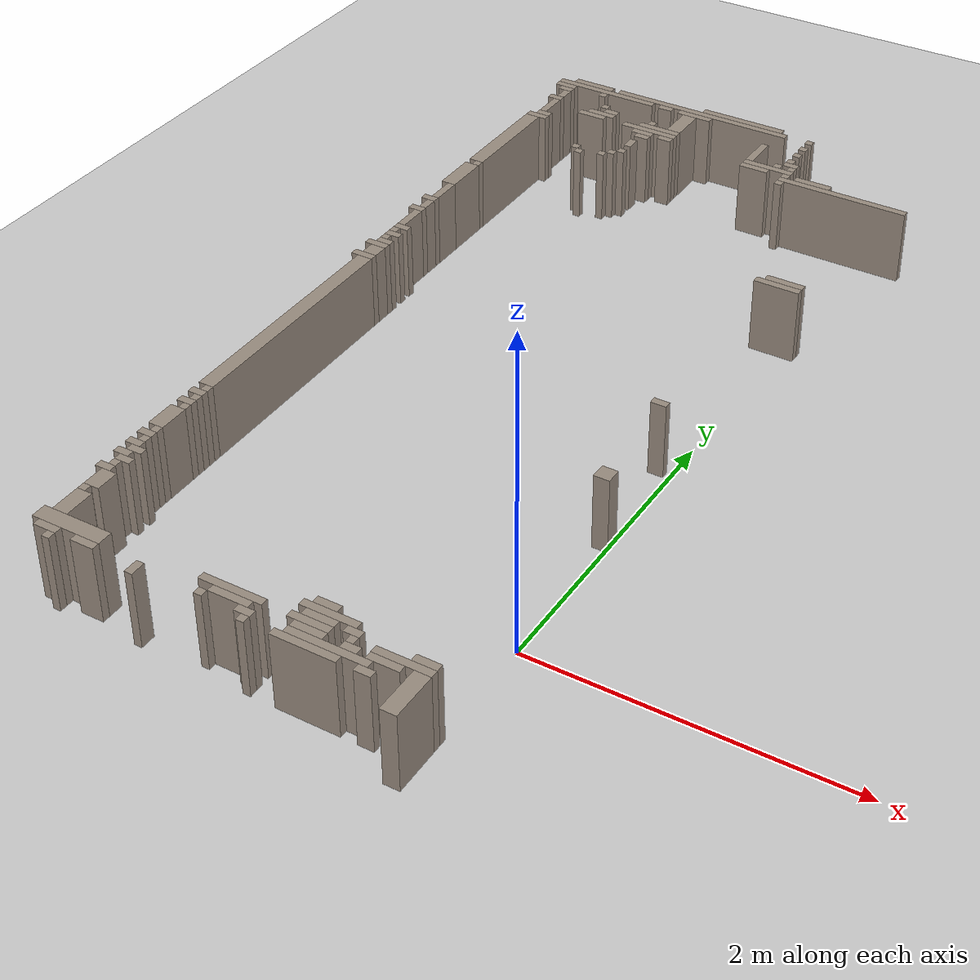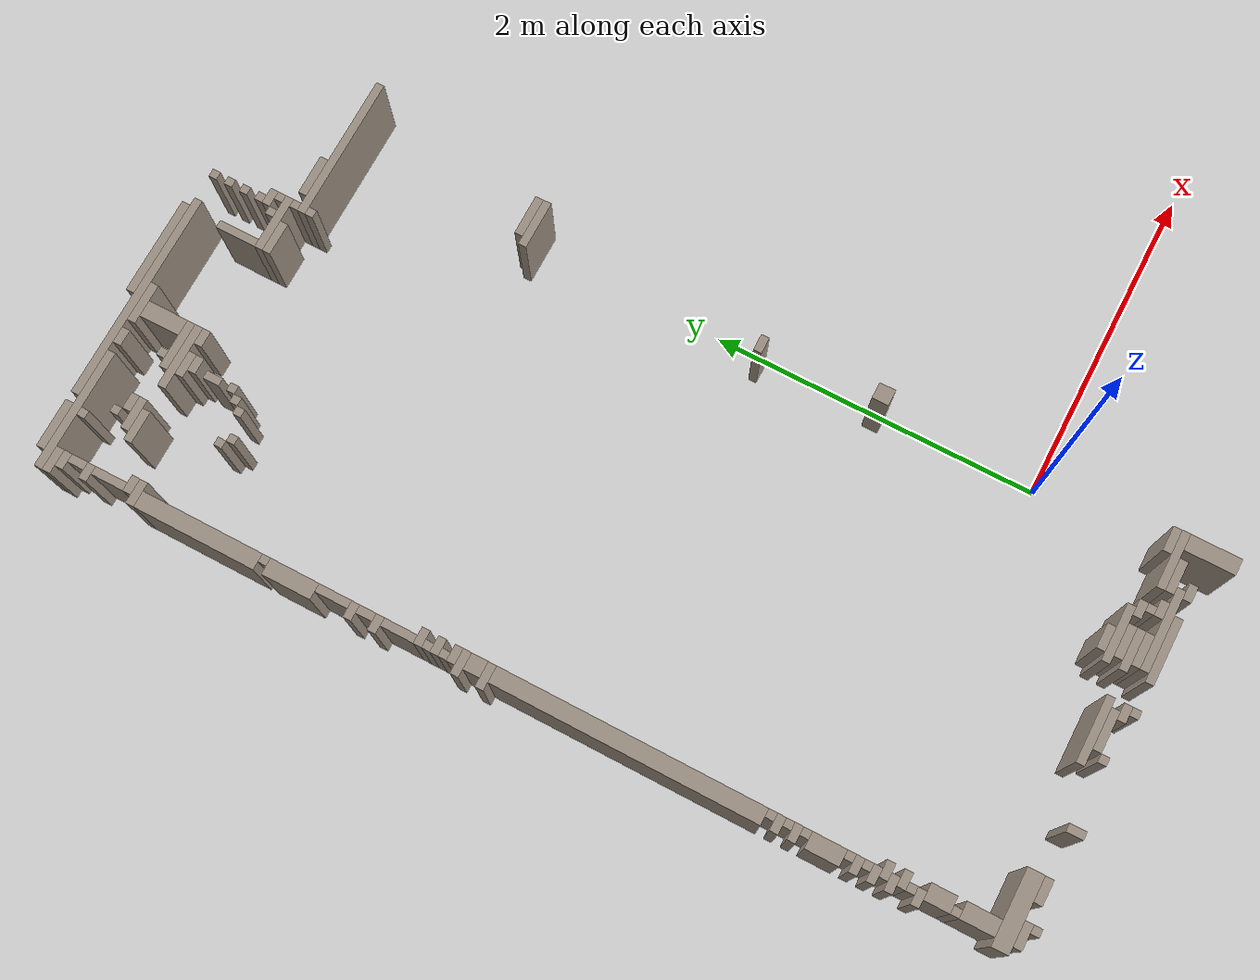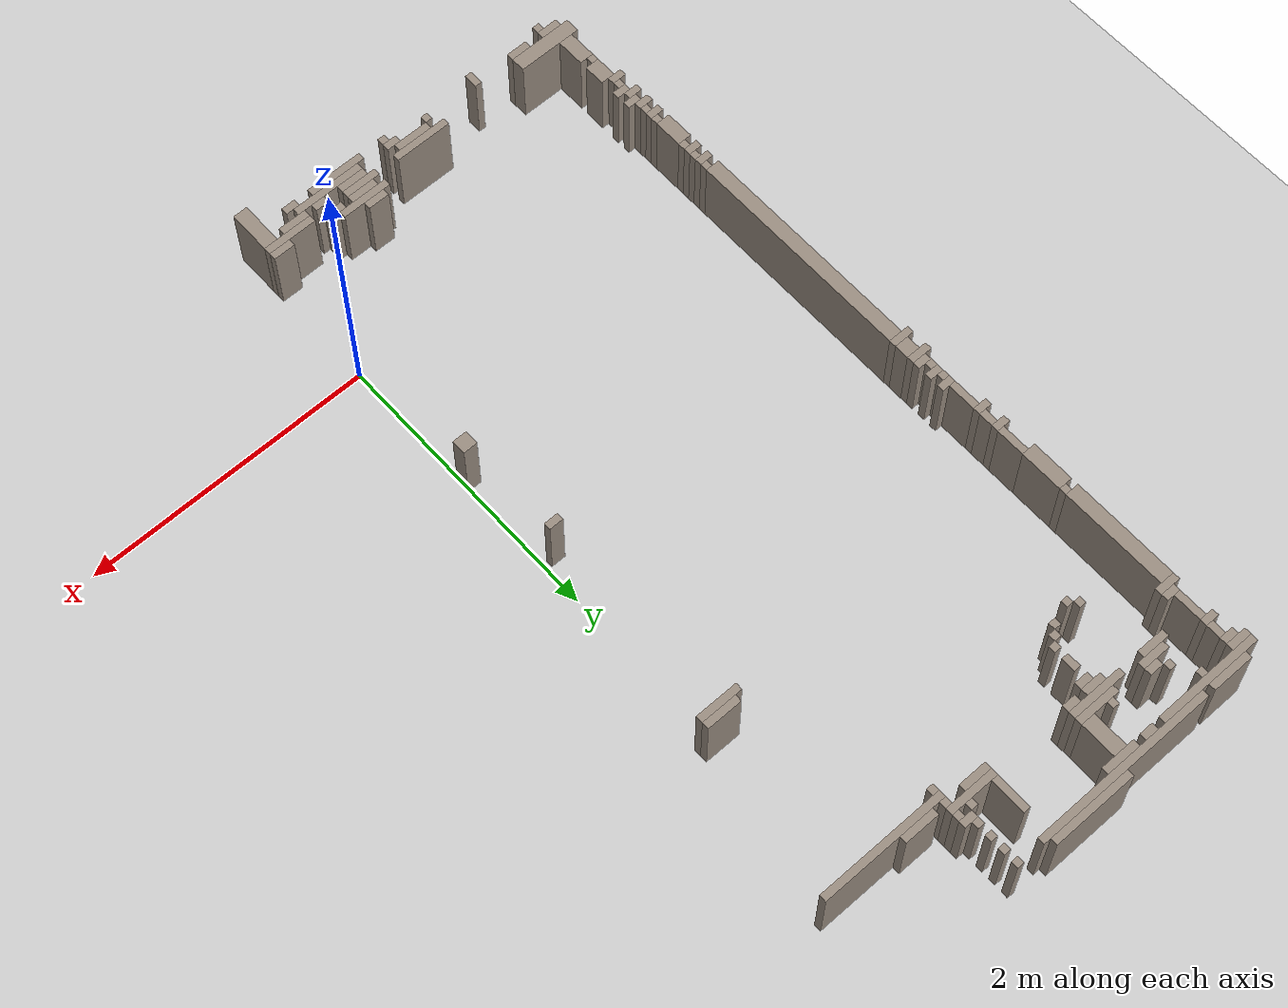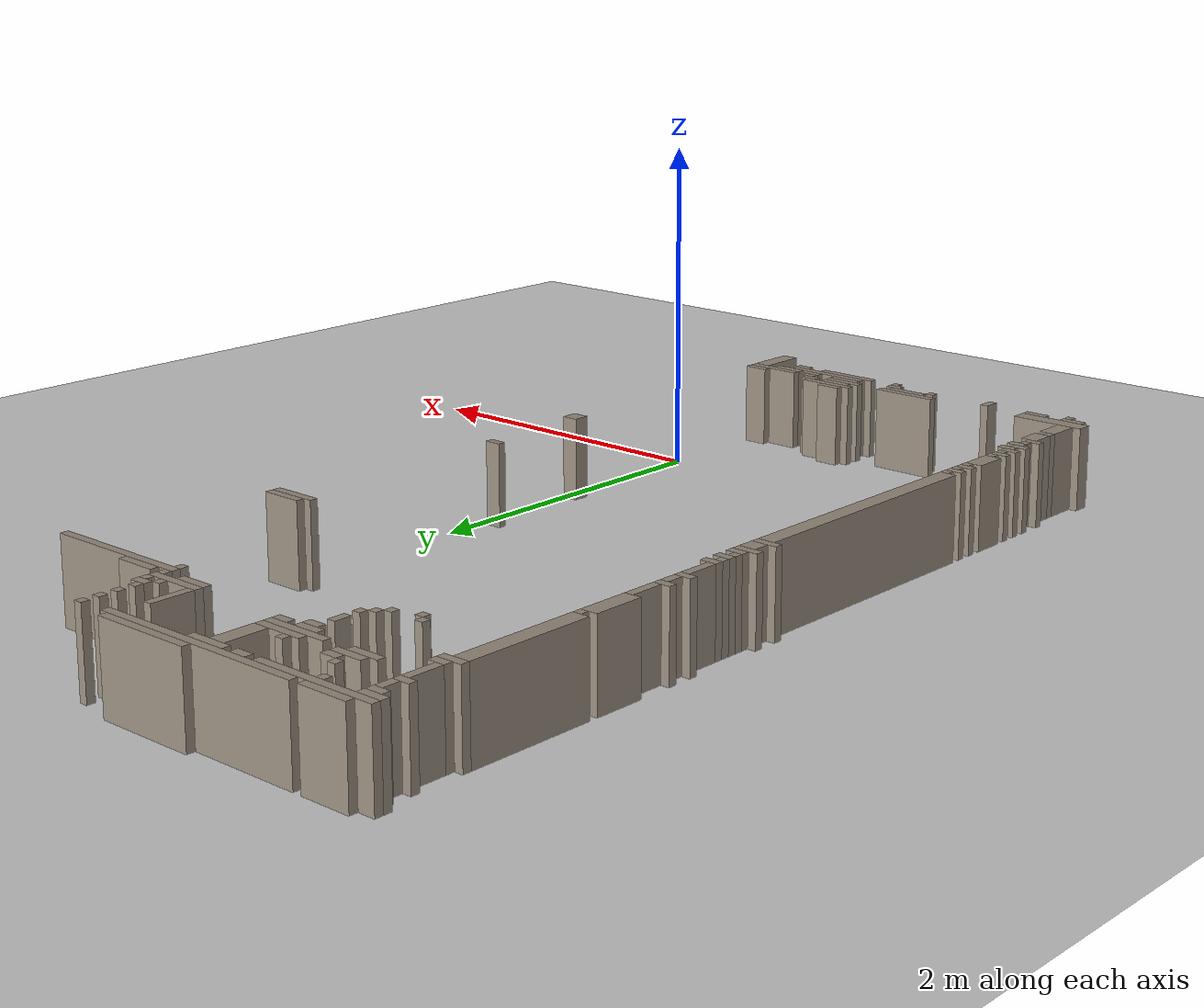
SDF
<sdf version="1.8">
 <world name="sala_real">
  <model name="ground_plane">
   <static>true</static>
   <link name="link">
    <collision name="col">
     <geometry><plane><normal>0 0 1</normal><size>100 100</size></plane></geometry>
    </collision>
    <visual name="vis">
     <geometry><plane><normal>0 0 1</normal><size>100 100</size></plane></geometry>
     <material><ambient>0.8 0.8 0.8 1</ambient><diffuse>0.8 0.8 0.8 1</diffuse></material>
    </visual>
   </link>
  </model>
  <model name="wall_1">
   <static>true</static>
   <pose>-0.610 4.912 0.250 0 0 0</pose>
   <link name="link">
    <collision name="col"><geometry><box><size>0.050 0.050 0.500</size></box></geometry></collision>
    <visual name="vis">
     <geometry><box><size>0.050 0.050 0.500</size></box></geometry>
     <material><ambient>0.6 0.55 0.5 1</ambient><diffuse>0.6 0.55 0.5 1</diffuse></material>
    </visual>
   </link>
  </model>
  <model name="wall_2">
   <static>true</static>
   <pose>-0.610 4.812 0.250 0 0 0</pose>
   <link name="link">
    <collision name="col"><geometry><box><size>0.050 0.050 0.500</size></box></geometry></collision>
    <visual name="vis">
     <geometry><box><size>0.050 0.050 0.500</size></box></geometry>
     <material><ambient>0.6 0.55 0.5 1</ambient><diffuse>0.6 0.55 0.5 1</diffuse></material>
    </visual>
   </link>
  </model>
  <model name="wall_4">
   <static>true</static>
   <pose>-2.435 4.762 0.250 0 0 0</pose>
   <link name="link">
    <collision name="col"><geometry><box><size>0.100 0.050 0.500</size></box></geometry></collision>
    <visual name="vis">
     <geometry><box><size>0.100 0.050 0.500</size></box></geometry>
     <material><ambient>0.6 0.55 0.5 1</ambient><diffuse>0.6 0.55 0.5 1</diffuse></material>
    </visual>
   </link>
  </model>
  <model name="wall_5">
   <static>true</static>
   <pose>-0.610 4.712 0.250 0 0 0</pose>
   <link name="link">
    <collision name="col"><geometry><box><size>0.050 0.050 0.500</size></box></geometry></collision>
    <visual name="vis">
     <geometry><box><size>0.050 0.050 0.500</size></box></geometry>
     <material><ambient>0.6 0.55 0.5 1</ambient><diffuse>0.6 0.55 0.5 1</diffuse></material>
    </visual>
   </link>
  </model>
  <model name="wall_6">
   <static>true</static>
   <pose>-2.410 4.687 0.250 0 0 0</pose>
   <link name="link">
    <collision name="col"><geometry><box><size>0.050 0.100 0.500</size></box></geometry></collision>
    <visual name="vis">
     <geometry><box><size>0.050 0.100 0.500</size></box></geometry>
     <material><ambient>0.6 0.55 0.5 1</ambient><diffuse>0.6 0.55 0.5 1</diffuse></material>
    </visual>
   </link>
  </model>
  <model name="wall_8">
   <static>true</static>
   <pose>-1.485 4.712 0.250 0 0 0</pose>
   <link name="link">
    <collision name="col"><geometry><box><size>0.100 0.250 0.500</size></box></geometry></collision>
    <visual name="vis">
     <geometry><box><size>0.100 0.250 0.500</size></box></geometry>
     <material><ambient>0.6 0.55 0.5 1</ambient><diffuse>0.6 0.55 0.5 1</diffuse></material>
    </visual>
   </link>
  </model>
  <model name="wall_11">
   <static>true</static>
   <pose>-0.560 4.512 0.250 0 0 0</pose>
   <link name="link">
    <collision name="col"><geometry><box><size>0.050 0.050 0.500</size></box></geometry></collision>
    <visual name="vis">
     <geometry><box><size>0.050 0.050 0.500</size></box></geometry>
     <material><ambient>0.6 0.55 0.5 1</ambient><diffuse>0.6 0.55 0.5 1</diffuse></material>
    </visual>
   </link>
  </model>
  <model name="wall_13">
   <static>true</static>
   <pose>-1.660 4.612 0.250 0 0 0</pose>
   <link name="link">
    <collision name="col"><geometry><box><size>0.050 0.050 0.500</size></box></geometry></collision>
    <visual name="vis">
     <geometry><box><size>0.050 0.050 0.500</size></box></geometry>
     <material><ambient>0.6 0.55 0.5 1</ambient><diffuse>0.6 0.55 0.5 1</diffuse></material>
    </visual>
   </link>
  </model>
  <model name="wall_14">
   <static>true</static>
   <pose>-0.560 4.412 0.250 0 0 0</pose>
   <link name="link">
    <collision name="col"><geometry><box><size>0.050 0.050 0.500</size></box></geometry></collision>
    <visual name="vis">
     <geometry><box><size>0.050 0.050 0.500</size></box></geometry>
     <material><ambient>0.6 0.55 0.5 1</ambient><diffuse>0.6 0.55 0.5 1</diffuse></material>
    </visual>
   </link>
  </model>
  <model name="wall_15">
   <static>true</static>
   <pose>-2.435 4.612 0.250 0 0 0</pose>
   <link name="link">
    <collision name="col"><geometry><box><size>0.100 0.050 0.500</size></box></geometry></collision>
    <visual name="vis">
     <geometry><box><size>0.100 0.050 0.500</size></box></geometry>
     <material><ambient>0.6 0.55 0.5 1</ambient><diffuse>0.6 0.55 0.5 1</diffuse></material>
    </visual>
   </link>
  </model>
  <model name="wall_16">
   <static>true</static>
   <pose>-1.660 4.287 0.250 0 0 0</pose>
   <link name="link">
    <collision name="col"><geometry><box><size>0.050 0.100 0.500</size></box></geometry></collision>
    <visual name="vis">
     <geometry><box><size>0.050 0.100 0.500</size></box></geometry>
     <material><ambient>0.6 0.55 0.5 1</ambient><diffuse>0.6 0.55 0.5 1</diffuse></material>
    </visual>
   </link>
  </model>
  <model name="wall_29">
   <static>true</static>
   <pose>-2.410 4.487 0.250 0 0 0</pose>
   <link name="link">
    <collision name="col"><geometry><box><size>0.050 0.200 0.500</size></box></geometry></collision>
    <visual name="vis">
     <geometry><box><size>0.050 0.200 0.500</size></box></geometry>
     <material><ambient>0.6 0.55 0.5 1</ambient><diffuse>0.6 0.55 0.5 1</diffuse></material>
    </visual>
   </link>
  </model>
  <model name="wall_31">
   <static>true</static>
   <pose>-2.435 3.912 0.250 0 0 0</pose>
   <link name="link">
    <collision name="col"><geometry><box><size>0.100 0.750 0.500</size></box></geometry></collision>
    <visual name="vis">
     <geometry><box><size>0.100 0.750 0.500</size></box></geometry>
     <material><ambient>0.6 0.55 0.5 1</ambient><diffuse>0.6 0.55 0.5 1</diffuse></material>
    </visual>
   </link>
  </model>
  <model name="wall_43">
   <static>true</static>
   <pose>-2.410 3.512 0.250 0 0 0</pose>
   <link name="link">
    <collision name="col"><geometry><box><size>0.050 0.050 0.500</size></box></geometry></collision>
    <visual name="vis">
     <geometry><box><size>0.050 0.050 0.500</size></box></geometry>
     <material><ambient>0.6 0.55 0.5 1</ambient><diffuse>0.6 0.55 0.5 1</diffuse></material>
    </visual>
   </link>
  </model>
  <model name="wall_52">
   <static>true</static>
   <pose>-2.435 3.337 0.250 0 0 0</pose>
   <link name="link">
    <collision name="col"><geometry><box><size>0.100 0.300 0.500</size></box></geometry></collision>
    <visual name="vis">
     <geometry><box><size>0.100 0.300 0.500</size></box></geometry>
     <material><ambient>0.6 0.55 0.5 1</ambient><diffuse>0.6 0.55 0.5 1</diffuse></material>
    </visual>
   </link>
  </model>
  <model name="wall_54">
   <static>true</static>
   <pose>-2.410 3.087 0.250 0 0 0</pose>
   <link name="link">
    <collision name="col"><geometry><box><size>0.050 0.200 0.500</size></box></geometry></collision>
    <visual name="vis">
     <geometry><box><size>0.050 0.200 0.500</size></box></geometry>
     <material><ambient>0.6 0.55 0.5 1</ambient><diffuse>0.6 0.55 0.5 1</diffuse></material>
    </visual>
   </link>
  </model>
  <model name="wall_57">
   <static>true</static>
   <pose>-2.435 2.962 0.250 0 0 0</pose>
   <link name="link">
    <collision name="col"><geometry><box><size>0.100 0.050 0.500</size></box></geometry></collision>
    <visual name="vis">
     <geometry><box><size>0.100 0.050 0.500</size></box></geometry>
     <material><ambient>0.6 0.55 0.5 1</ambient><diffuse>0.6 0.55 0.5 1</diffuse></material>
    </visual>
   </link>
  </model>
  <model name="wall_61">
   <static>true</static>
   <pose>-2.410 2.887 0.250 0 0 0</pose>
   <link name="link">
    <collision name="col"><geometry><box><size>0.050 0.100 0.500</size></box></geometry></collision>
    <visual name="vis">
     <geometry><box><size>0.050 0.100 0.500</size></box></geometry>
     <material><ambient>0.6 0.55 0.5 1</ambient><diffuse>0.6 0.55 0.5 1</diffuse></material>
    </visual>
   </link>
  </model>
  <model name="wall_65">
   <static>true</static>
   <pose>-2.385 4.362 0.250 0 0 0</pose>
   <link name="link">
    <collision name="col"><geometry><box><size>0.100 0.050 0.500</size></box></geometry></collision>
    <visual name="vis">
     <geometry><box><size>0.100 0.050 0.500</size></box></geometry>
     <material><ambient>0.6 0.55 0.5 1</ambient><diffuse>0.6 0.55 0.5 1</diffuse></material>
    </visual>
   </link>
  </model>
  <model name="wall_68">
   <static>true</static>
   <pose>-2.410 2.687 0.250 0 0 0</pose>
   <link name="link">
    <collision name="col"><geometry><box><size>0.050 0.200 0.500</size></box></geometry></collision>
    <visual name="vis">
     <geometry><box><size>0.050 0.200 0.500</size></box></geometry>
     <material><ambient>0.6 0.55 0.5 1</ambient><diffuse>0.6 0.55 0.5 1</diffuse></material>
    </visual>
   </link>
  </model>
  <model name="wall_73">
   <static>true</static>
   <pose>-2.385 2.562 0.250 0 0 0</pose>
   <link name="link">
    <collision name="col"><geometry><box><size>0.100 0.050 0.500</size></box></geometry></collision>
    <visual name="vis">
     <geometry><box><size>0.100 0.050 0.500</size></box></geometry>
     <material><ambient>0.6 0.55 0.5 1</ambient><diffuse>0.6 0.55 0.5 1</diffuse></material>
    </visual>
   </link>
  </model>
  <model name="wall_75">
   <static>true</static>
   <pose>-2.410 2.512 0.250 0 0 0</pose>
   <link name="link">
    <collision name="col"><geometry><box><size>0.050 0.050 0.500</size></box></geometry></collision>
    <visual name="vis">
     <geometry><box><size>0.050 0.050 0.500</size></box></geometry>
     <material><ambient>0.6 0.55 0.5 1</ambient><diffuse>0.6 0.55 0.5 1</diffuse></material>
    </visual>
   </link>
  </model>
  <model name="wall_79">
   <static>true</static>
   <pose>-2.385 2.462 0.250 0 0 0</pose>
   <link name="link">
    <collision name="col"><geometry><box><size>0.100 0.050 0.500</size></box></geometry></collision>
    <visual name="vis">
     <geometry><box><size>0.100 0.050 0.500</size></box></geometry>
     <material><ambient>0.6 0.55 0.5 1</ambient><diffuse>0.6 0.55 0.5 1</diffuse></material>
    </visual>
   </link>
  </model>
  <model name="wall_82">
   <static>true</static>
   <pose>-2.410 4.312 0.250 0 0 0</pose>
   <link name="link">
    <collision name="col"><geometry><box><size>0.150 0.050 0.500</size></box></geometry></collision>
    <visual name="vis">
     <geometry><box><size>0.150 0.050 0.500</size></box></geometry>
     <material><ambient>0.6 0.55 0.5 1</ambient><diffuse>0.6 0.55 0.5 1</diffuse></material>
    </visual>
   </link>
  </model>
  <model name="wall_85">
   <static>true</static>
   <pose>-2.385 2.362 0.250 0 0 0</pose>
   <link name="link">
    <collision name="col"><geometry><box><size>0.100 0.050 0.500</size></box></geometry></collision>
    <visual name="vis">
     <geometry><box><size>0.100 0.050 0.500</size></box></geometry>
     <material><ambient>0.6 0.55 0.5 1</ambient><diffuse>0.6 0.55 0.5 1</diffuse></material>
    </visual>
   </link>
  </model>
  <model name="wall_89">
   <static>true</static>
   <pose>-2.410 2.312 0.250 0 0 0</pose>
   <link name="link">
    <collision name="col"><geometry><box><size>0.150 0.050 0.500</size></box></geometry></collision>
    <visual name="vis">
     <geometry><box><size>0.150 0.050 0.500</size></box></geometry>
     <material><ambient>0.6 0.55 0.5 1</ambient><diffuse>0.6 0.55 0.5 1</diffuse></material>
    </visual>
   </link>
  </model>
  <model name="wall_91">
   <static>true</static>
   <pose>-2.385 2.237 0.250 0 0 0</pose>
   <link name="link">
    <collision name="col"><geometry><box><size>0.100 0.100 0.500</size></box></geometry></collision>
    <visual name="vis">
     <geometry><box><size>0.100 0.100 0.500</size></box></geometry>
     <material><ambient>0.6 0.55 0.5 1</ambient><diffuse>0.6 0.55 0.5 1</diffuse></material>
    </visual>
   </link>
  </model>
  <model name="wall_133">
   <static>true</static>
   <pose>-2.385 1.337 0.250 0 0 0</pose>
   <link name="link">
    <collision name="col"><geometry><box><size>0.100 1.600 0.500</size></box></geometry></collision>
    <visual name="vis">
     <geometry><box><size>0.100 1.600 0.500</size></box></geometry>
     <material><ambient>0.6 0.55 0.5 1</ambient><diffuse>0.6 0.55 0.5 1</diffuse></material>
    </visual>
   </link>
  </model>
  <model name="wall_137">
   <static>true</static>
   <pose>-2.360 0.512 0.250 0 0 0</pose>
   <link name="link">
    <collision name="col"><geometry><box><size>0.050 0.050 0.500</size></box></geometry></collision>
    <visual name="vis">
     <geometry><box><size>0.050 0.050 0.500</size></box></geometry>
     <material><ambient>0.6 0.55 0.5 1</ambient><diffuse>0.6 0.55 0.5 1</diffuse></material>
    </visual>
   </link>
  </model>
  <model name="wall_139">
   <static>true</static>
   <pose>-2.385 0.462 0.250 0 0 0</pose>
   <link name="link">
    <collision name="col"><geometry><box><size>0.100 0.050 0.500</size></box></geometry></collision>
    <visual name="vis">
     <geometry><box><size>0.100 0.050 0.500</size></box></geometry>
     <material><ambient>0.6 0.55 0.5 1</ambient><diffuse>0.6 0.55 0.5 1</diffuse></material>
    </visual>
   </link>
  </model>
  <model name="wall_141">
   <static>true</static>
   <pose>-2.360 0.412 0.250 0 0 0</pose>
   <link name="link">
    <collision name="col"><geometry><box><size>0.050 0.050 0.500</size></box></geometry></collision>
    <visual name="vis">
     <geometry><box><size>0.050 0.050 0.500</size></box></geometry>
     <material><ambient>0.6 0.55 0.5 1</ambient><diffuse>0.6 0.55 0.5 1</diffuse></material>
    </visual>
   </link>
  </model>
  <model name="wall_143">
   <static>true</static>
   <pose>-2.385 0.362 0.250 0 0 0</pose>
   <link name="link">
    <collision name="col"><geometry><box><size>0.100 0.050 0.500</size></box></geometry></collision>
    <visual name="vis">
     <geometry><box><size>0.100 0.050 0.500</size></box></geometry>
     <material><ambient>0.6 0.55 0.5 1</ambient><diffuse>0.6 0.55 0.5 1</diffuse></material>
    </visual>
   </link>
  </model>
  <model name="wall_152">
   <static>true</static>
   <pose>-2.360 0.312 0.250 0 0 0</pose>
   <link name="link">
    <collision name="col"><geometry><box><size>0.050 0.050 0.500</size></box></geometry></collision>
    <visual name="vis">
     <geometry><box><size>0.050 0.050 0.500</size></box></geometry>
     <material><ambient>0.6 0.55 0.5 1</ambient><diffuse>0.6 0.55 0.5 1</diffuse></material>
    </visual>
   </link>
  </model>
  <model name="wall_155">
   <static>true</static>
   <pose>-2.385 0.187 0.250 0 0 0</pose>
   <link name="link">
    <collision name="col"><geometry><box><size>0.100 0.200 0.500</size></box></geometry></collision>
    <visual name="vis">
     <geometry><box><size>0.100 0.200 0.500</size></box></geometry>
     <material><ambient>0.6 0.55 0.5 1</ambient><diffuse>0.6 0.55 0.5 1</diffuse></material>
    </visual>
   </link>
  </model>
  <model name="wall_157">
   <static>true</static>
   <pose>-2.360 0.062 0.250 0 0 0</pose>
   <link name="link">
    <collision name="col"><geometry><box><size>0.050 0.050 0.500</size></box></geometry></collision>
    <visual name="vis">
     <geometry><box><size>0.050 0.050 0.500</size></box></geometry>
     <material><ambient>0.6 0.55 0.5 1</ambient><diffuse>0.6 0.55 0.5 1</diffuse></material>
    </visual>
   </link>
  </model>
  <model name="wall_158">
   <static>true</static>
   <pose>-2.385 0.012 0.250 0 0 0</pose>
   <link name="link">
    <collision name="col"><geometry><box><size>0.100 0.050 0.500</size></box></geometry></collision>
    <visual name="vis">
     <geometry><box><size>0.100 0.050 0.500</size></box></geometry>
     <material><ambient>0.6 0.55 0.5 1</ambient><diffuse>0.6 0.55 0.5 1</diffuse></material>
    </visual>
   </link>
  </model>
  <model name="wall_159">
   <static>true</static>
   <pose>-2.385 -0.088 0.250 0 0 0</pose>
   <link name="link">
    <collision name="col"><geometry><box><size>0.100 0.050 0.500</size></box></geometry></collision>
    <visual name="vis">
     <geometry><box><size>0.100 0.050 0.500</size></box></geometry>
     <material><ambient>0.6 0.55 0.5 1</ambient><diffuse>0.6 0.55 0.5 1</diffuse></material>
    </visual>
   </link>
  </model>
  <model name="wall_162">
   <static>true</static>
   <pose>-2.335 -0.138 0.250 0 0 0</pose>
   <link name="link">
    <collision name="col"><geometry><box><size>0.100 0.050 0.500</size></box></geometry></collision>
    <visual name="vis">
     <geometry><box><size>0.100 0.050 0.500</size></box></geometry>
     <material><ambient>0.6 0.55 0.5 1</ambient><diffuse>0.6 0.55 0.5 1</diffuse></material>
    </visual>
   </link>
  </model>
  <model name="wall_163">
   <static>true</static>
   <pose>-2.360 -0.038 0.250 0 0 0</pose>
   <link name="link">
    <collision name="col"><geometry><box><size>0.050 0.050 0.500</size></box></geometry></collision>
    <visual name="vis">
     <geometry><box><size>0.050 0.050 0.500</size></box></geometry>
     <material><ambient>0.6 0.55 0.5 1</ambient><diffuse>0.6 0.55 0.5 1</diffuse></material>
    </visual>
   </link>
  </model>
  <model name="wall_164">
   <static>true</static>
   <pose>-2.385 -0.188 0.250 0 0 0</pose>
   <link name="link">
    <collision name="col"><geometry><box><size>0.100 0.050 0.500</size></box></geometry></collision>
    <visual name="vis">
     <geometry><box><size>0.100 0.050 0.500</size></box></geometry>
     <material><ambient>0.6 0.55 0.5 1</ambient><diffuse>0.6 0.55 0.5 1</diffuse></material>
    </visual>
   </link>
  </model>
  <model name="wall_166">
   <static>true</static>
   <pose>-2.335 -0.238 0.250 0 0 0</pose>
   <link name="link">
    <collision name="col"><geometry><box><size>0.100 0.050 0.500</size></box></geometry></collision>
    <visual name="vis">
     <geometry><box><size>0.100 0.050 0.500</size></box></geometry>
     <material><ambient>0.6 0.55 0.5 1</ambient><diffuse>0.6 0.55 0.5 1</diffuse></material>
    </visual>
   </link>
  </model>
  <model name="wall_168">
   <static>true</static>
   <pose>-2.360 -0.288 0.250 0 0 0</pose>
   <link name="link">
    <collision name="col"><geometry><box><size>0.050 0.050 0.500</size></box></geometry></collision>
    <visual name="vis">
     <geometry><box><size>0.050 0.050 0.500</size></box></geometry>
     <material><ambient>0.6 0.55 0.5 1</ambient><diffuse>0.6 0.55 0.5 1</diffuse></material>
    </visual>
   </link>
  </model>
  <model name="wall_173">
   <static>true</static>
   <pose>-2.335 -0.438 0.250 0 0 0</pose>
   <link name="link">
    <collision name="col"><geometry><box><size>0.100 0.150 0.500</size></box></geometry></collision>
    <visual name="vis">
     <geometry><box><size>0.100 0.150 0.500</size></box></geometry>
     <material><ambient>0.6 0.55 0.5 1</ambient><diffuse>0.6 0.55 0.5 1</diffuse></material>
    </visual>
   </link>
  </model>
  <model name="wall_187">
   <static>true</static>
   <pose>-0.685 -0.738 0.250 0 0 0</pose>
   <link name="link">
    <collision name="col"><geometry><box><size>0.200 0.050 0.500</size></box></geometry></collision>
    <visual name="vis">
     <geometry><box><size>0.200 0.050 0.500</size></box></geometry>
     <material><ambient>0.6 0.55 0.5 1</ambient><diffuse>0.6 0.55 0.5 1</diffuse></material>
    </visual>
   </link>
  </model>
  <model name="wall_188">
   <static>true</static>
   <pose>-0.035 0.987 0.250 0 0 0</pose>
   <link name="link">
    <collision name="col"><geometry><box><size>0.100 0.100 0.500</size></box></geometry></collision>
    <visual name="vis">
     <geometry><box><size>0.100 0.100 0.500</size></box></geometry>
     <material><ambient>0.6 0.55 0.5 1</ambient><diffuse>0.6 0.55 0.5 1</diffuse></material>
    </visual>
   </link>
  </model>
  <model name="wall_191">
   <static>true</static>
   <pose>-1.710 4.112 0.250 0 0 0</pose>
   <link name="link">
    <collision name="col"><geometry><box><size>0.050 0.050 0.500</size></box></geometry></collision>
    <visual name="vis">
     <geometry><box><size>0.050 0.050 0.500</size></box></geometry>
     <material><ambient>0.6 0.55 0.5 1</ambient><diffuse>0.6 0.55 0.5 1</diffuse></material>
    </visual>
   </link>
  </model>
  <model name="wall_200">
   <static>true</static>
   <pose>-1.310 -0.888 0.250 0 0 0</pose>
   <link name="link">
    <collision name="col"><geometry><box><size>0.050 0.050 0.500</size></box></geometry></collision>
    <visual name="vis">
     <geometry><box><size>0.050 0.050 0.500</size></box></geometry>
     <material><ambient>0.6 0.55 0.5 1</ambient><diffuse>0.6 0.55 0.5 1</diffuse></material>
    </visual>
   </link>
  </model>
  <model name="wall_201">
   <static>true</static>
   <pose>-1.035 -0.888 0.250 0 0 0</pose>
   <link name="link">
    <collision name="col"><geometry><box><size>0.100 0.050 0.500</size></box></geometry></collision>
    <visual name="vis">
     <geometry><box><size>0.100 0.050 0.500</size></box></geometry>
     <material><ambient>0.6 0.55 0.5 1</ambient><diffuse>0.6 0.55 0.5 1</diffuse></material>
    </visual>
   </link>
  </model>
  <model name="wall_211">
   <static>true</static>
   <pose>-1.010 -0.938 0.250 0 0 0</pose>
   <link name="link">
    <collision name="col"><geometry><box><size>0.050 0.050 0.500</size></box></geometry></collision>
    <visual name="vis">
     <geometry><box><size>0.050 0.050 0.500</size></box></geometry>
     <material><ambient>0.6 0.55 0.5 1</ambient><diffuse>0.6 0.55 0.5 1</diffuse></material>
    </visual>
   </link>
  </model>
  <model name="wall_212">
   <static>true</static>
   <pose>-0.285 -0.938 0.250 0 0 0</pose>
   <link name="link">
    <collision name="col"><geometry><box><size>0.100 0.050 0.500</size></box></geometry></collision>
    <visual name="vis">
     <geometry><box><size>0.100 0.050 0.500</size></box></geometry>
     <material><ambient>0.6 0.55 0.5 1</ambient><diffuse>0.6 0.55 0.5 1</diffuse></material>
    </visual>
   </link>
  </model>
  <model name="wall_215">
   <static>true</static>
   <pose>-0.160 -0.788 0.250 0 0 0</pose>
   <link name="link">
    <collision name="col"><geometry><box><size>0.350 0.050 0.500</size></box></geometry></collision>
    <visual name="vis">
     <geometry><box><size>0.350 0.050 0.500</size></box></geometry>
     <material><ambient>0.6 0.55 0.5 1</ambient><diffuse>0.6 0.55 0.5 1</diffuse></material>
    </visual>
   </link>
  </model>
  <model name="wall_236">
   <static>true</static>
   <pose>-2.060 -0.888 0.250 0 0 0</pose>
   <link name="link">
    <collision name="col"><geometry><box><size>0.150 0.050 0.500</size></box></geometry></collision>
    <visual name="vis">
     <geometry><box><size>0.150 0.050 0.500</size></box></geometry>
     <material><ambient>0.6 0.55 0.5 1</ambient><diffuse>0.6 0.55 0.5 1</diffuse></material>
    </visual>
   </link>
  </model>
  <model name="wall_243">
   <static>true</static>
   <pose>-0.035 -0.963 0.250 0 0 0</pose>
   <link name="link">
    <collision name="col"><geometry><box><size>0.100 0.300 0.500</size></box></geometry></collision>
    <visual name="vis">
     <geometry><box><size>0.100 0.300 0.500</size></box></geometry>
     <material><ambient>0.6 0.55 0.5 1</ambient><diffuse>0.6 0.55 0.5 1</diffuse></material>
    </visual>
   </link>
  </model>
  <model name="wall_264">
   <static>true</static>
   <pose>-2.335 -0.663 0.250 0 0 0</pose>
   <link name="link">
    <collision name="col"><geometry><box><size>0.100 0.200 0.500</size></box></geometry></collision>
    <visual name="vis">
     <geometry><box><size>0.100 0.200 0.500</size></box></geometry>
     <material><ambient>0.6 0.55 0.5 1</ambient><diffuse>0.6 0.55 0.5 1</diffuse></material>
    </visual>
   </link>
  </model>
  <model name="wall_325">
   <static>true</static>
   <pose>-2.310 -0.888 0.250 0 0 0</pose>
   <link name="link">
    <collision name="col"><geometry><box><size>0.150 0.050 0.500</size></box></geometry></collision>
    <visual name="vis">
     <geometry><box><size>0.150 0.050 0.500</size></box></geometry>
     <material><ambient>0.6 0.55 0.5 1</ambient><diffuse>0.6 0.55 0.5 1</diffuse></material>
    </visual>
   </link>
  </model>
  <model name="wall_388">
   <static>true</static>
   <pose>-0.610 4.612 0.250 0 0 0</pose>
   <link name="link">
    <collision name="col"><geometry><box><size>0.050 0.050 0.500</size></box></geometry></collision>
    <visual name="vis">
     <geometry><box><size>0.050 0.050 0.500</size></box></geometry>
     <material><ambient>0.6 0.55 0.5 1</ambient><diffuse>0.6 0.55 0.5 1</diffuse></material>
    </visual>
   </link>
  </model>
  <model name="wall_422">
   <static>true</static>
   <pose>-2.360 -0.538 0.250 0 0 0</pose>
   <link name="link">
    <collision name="col"><geometry><box><size>0.050 0.050 0.500</size></box></geometry></collision>
    <visual name="vis">
     <geometry><box><size>0.050 0.050 0.500</size></box></geometry>
     <material><ambient>0.6 0.55 0.5 1</ambient><diffuse>0.6 0.55 0.5 1</diffuse></material>
    </visual>
   </link>
  </model>
  <model name="wall_441">
   <static>true</static>
   <pose>-0.560 4.312 0.250 0 0 0</pose>
   <link name="link">
    <collision name="col"><geometry><box><size>0.050 0.050 0.500</size></box></geometry></collision>
    <visual name="vis">
     <geometry><box><size>0.050 0.050 0.500</size></box></geometry>
     <material><ambient>0.6 0.55 0.5 1</ambient><diffuse>0.6 0.55 0.5 1</diffuse></material>
    </visual>
   </link>
  </model>
  <model name="wall_444">
   <static>true</static>
   <pose>-0.660 4.512 0.250 0 0 0</pose>
   <link name="link">
    <collision name="col"><geometry><box><size>0.050 0.050 0.500</size></box></geometry></collision>
    <visual name="vis">
     <geometry><box><size>0.050 0.050 0.500</size></box></geometry>
     <material><ambient>0.6 0.55 0.5 1</ambient><diffuse>0.6 0.55 0.5 1</diffuse></material>
    </visual>
   </link>
  </model>
  <model name="wall_450">
   <static>true</static>
   <pose>-0.460 -0.788 0.250 0 0 0</pose>
   <link name="link">
    <collision name="col"><geometry><box><size>0.050 0.050 0.500</size></box></geometry></collision>
    <visual name="vis">
     <geometry><box><size>0.050 0.050 0.500</size></box></geometry>
     <material><ambient>0.6 0.55 0.5 1</ambient><diffuse>0.6 0.55 0.5 1</diffuse></material>
    </visual>
   </link>
  </model>
  <model name="wall_454">
   <static>true</static>
   <pose>-2.160 4.812 0.250 0 0 0</pose>
   <link name="link">
    <collision name="col"><geometry><box><size>0.050 0.050 0.500</size></box></geometry></collision>
    <visual name="vis">
     <geometry><box><size>0.050 0.050 0.500</size></box></geometry>
     <material><ambient>0.6 0.55 0.5 1</ambient><diffuse>0.6 0.55 0.5 1</diffuse></material>
    </visual>
   </link>
  </model>
  <model name="wall_459">
   <static>true</static>
   <pose>-2.410 2.412 0.250 0 0 0</pose>
   <link name="link">
    <collision name="col"><geometry><box><size>0.050 0.050 0.500</size></box></geometry></collision>
    <visual name="vis">
     <geometry><box><size>0.050 0.050 0.500</size></box></geometry>
     <material><ambient>0.6 0.55 0.5 1</ambient><diffuse>0.6 0.55 0.5 1</diffuse></material>
    </visual>
   </link>
  </model>
  <model name="wall_460">
   <static>true</static>
   <pose>-2.060 4.662 0.250 0 0 0</pose>
   <link name="link">
    <collision name="col"><geometry><box><size>0.050 0.050 0.500</size></box></geometry></collision>
    <visual name="vis">
     <geometry><box><size>0.050 0.050 0.500</size></box></geometry>
     <material><ambient>0.6 0.55 0.5 1</ambient><diffuse>0.6 0.55 0.5 1</diffuse></material>
    </visual>
   </link>
  </model>
  <model name="wall_465">
   <static>true</static>
   <pose>-2.260 -0.938 0.250 0 0 0</pose>
   <link name="link">
    <collision name="col"><geometry><box><size>0.050 0.050 0.500</size></box></geometry></collision>
    <visual name="vis">
     <geometry><box><size>0.050 0.050 0.500</size></box></geometry>
     <material><ambient>0.6 0.55 0.5 1</ambient><diffuse>0.6 0.55 0.5 1</diffuse></material>
    </visual>
   </link>
  </model>
  <model name="wall_489">
   <static>true</static>
   <pose>-1.710 -0.913 0.250 0 0 0</pose>
   <link name="link">
    <collision name="col"><geometry><box><size>0.050 0.100 0.500</size></box></geometry></collision>
    <visual name="vis">
     <geometry><box><size>0.050 0.100 0.500</size></box></geometry>
     <material><ambient>0.6 0.55 0.5 1</ambient><diffuse>0.6 0.55 0.5 1</diffuse></material>
    </visual>
   </link>
  </model>
  <model name="wall_495">
   <static>true</static>
   <pose>-1.960 4.062 0.250 0 0 0</pose>
   <link name="link">
    <collision name="col"><geometry><box><size>0.050 0.050 0.500</size></box></geometry></collision>
    <visual name="vis">
     <geometry><box><size>0.050 0.050 0.500</size></box></geometry>
     <material><ambient>0.6 0.55 0.5 1</ambient><diffuse>0.6 0.55 0.5 1</diffuse></material>
    </visual>
   </link>
  </model>
  <model name="wall_496">
   <static>true</static>
   <pose>-1.660 4.162 0.250 0 0 0</pose>
   <link name="link">
    <collision name="col"><geometry><box><size>0.050 0.050 0.500</size></box></geometry></collision>
    <visual name="vis">
     <geometry><box><size>0.050 0.050 0.500</size></box></geometry>
     <material><ambient>0.6 0.55 0.5 1</ambient><diffuse>0.6 0.55 0.5 1</diffuse></material>
    </visual>
   </link>
  </model>
  <model name="wall_498">
   <static>true</static>
   <pose>-0.860 4.612 0.250 0 0 0</pose>
   <link name="link">
    <collision name="col"><geometry><box><size>0.050 0.250 0.500</size></box></geometry></collision>
    <visual name="vis">
     <geometry><box><size>0.050 0.250 0.500</size></box></geometry>
     <material><ambient>0.6 0.55 0.5 1</ambient><diffuse>0.6 0.55 0.5 1</diffuse></material>
    </visual>
   </link>
  </model>
  <model name="wall_503">
   <static>true</static>
   <pose>-0.435 -0.838 0.250 0 0 0</pose>
   <link name="link">
    <collision name="col"><geometry><box><size>0.100 0.050 0.500</size></box></geometry></collision>
    <visual name="vis">
     <geometry><box><size>0.100 0.050 0.500</size></box></geometry>
     <material><ambient>0.6 0.55 0.5 1</ambient><diffuse>0.6 0.55 0.5 1</diffuse></material>
    </visual>
   </link>
  </model>
  <model name="wall_522">
   <static>true</static>
   <pose>-2.085 4.512 0.250 0 0 0</pose>
   <link name="link">
    <collision name="col"><geometry><box><size>0.200 0.050 0.500</size></box></geometry></collision>
    <visual name="vis">
     <geometry><box><size>0.200 0.050 0.500</size></box></geometry>
     <material><ambient>0.6 0.55 0.5 1</ambient><diffuse>0.6 0.55 0.5 1</diffuse></material>
    </visual>
   </link>
  </model>
  <model name="wall_528">
   <static>true</static>
   <pose>-1.910 4.012 0.250 0 0 0</pose>
   <link name="link">
    <collision name="col"><geometry><box><size>0.050 0.050 0.500</size></box></geometry></collision>
    <visual name="vis">
     <geometry><box><size>0.050 0.050 0.500</size></box></geometry>
     <material><ambient>0.6 0.55 0.5 1</ambient><diffuse>0.6 0.55 0.5 1</diffuse></material>
    </visual>
   </link>
  </model>
  <model name="wall_531">
   <static>true</static>
   <pose>-1.760 4.062 0.250 0 0 0</pose>
   <link name="link">
    <collision name="col"><geometry><box><size>0.050 0.050 0.500</size></box></geometry></collision>
    <visual name="vis">
     <geometry><box><size>0.050 0.050 0.500</size></box></geometry>
     <material><ambient>0.6 0.55 0.5 1</ambient><diffuse>0.6 0.55 0.5 1</diffuse></material>
    </visual>
   </link>
  </model>
  <model name="wall_561">
   <static>true</static>
   <pose>-0.485 -0.738 0.250 0 0 0</pose>
   <link name="link">
    <collision name="col"><geometry><box><size>0.100 0.050 0.500</size></box></geometry></collision>
    <visual name="vis">
     <geometry><box><size>0.100 0.050 0.500</size></box></geometry>
     <material><ambient>0.6 0.55 0.5 1</ambient><diffuse>0.6 0.55 0.5 1</diffuse></material>
    </visual>
   </link>
  </model>
  <model name="wall_636">
   <static>true</static>
   <pose>-1.135 4.962 0.250 0 0 0</pose>
   <link name="link">
    <collision name="col"><geometry><box><size>0.600 0.050 0.500</size></box></geometry></collision>
    <visual name="vis">
     <geometry><box><size>0.600 0.050 0.500</size></box></geometry>
     <material><ambient>0.6 0.55 0.5 1</ambient><diffuse>0.6 0.55 0.5 1</diffuse></material>
    </visual>
   </link>
  </model>
  <model name="wall_640">
   <static>true</static>
   <pose>-2.285 4.912 0.250 0 0 0</pose>
   <link name="link">
    <collision name="col"><geometry><box><size>0.300 0.050 0.500</size></box></geometry></collision>
    <visual name="vis">
     <geometry><box><size>0.300 0.050 0.500</size></box></geometry>
     <material><ambient>0.6 0.55 0.5 1</ambient><diffuse>0.6 0.55 0.5 1</diffuse></material>
    </visual>
   </link>
  </model>
  <model name="wall_641">
   <static>true</static>
   <pose>-1.435 4.912 0.250 0 0 0</pose>
   <link name="link">
    <collision name="col"><geometry><box><size>1.300 0.050 0.500</size></box></geometry></collision>
    <visual name="vis">
     <geometry><box><size>1.300 0.050 0.500</size></box></geometry>
     <material><ambient>0.6 0.55 0.5 1</ambient><diffuse>0.6 0.55 0.5 1</diffuse></material>
    </visual>
   </link>
  </model>
  <model name="wall_647">
   <static>true</static>
   <pose>-2.160 4.862 0.250 0 0 0</pose>
   <link name="link">
    <collision name="col"><geometry><box><size>0.750 0.050 0.500</size></box></geometry></collision>
    <visual name="vis">
     <geometry><box><size>0.750 0.050 0.500</size></box></geometry>
     <material><ambient>0.6 0.55 0.5 1</ambient><diffuse>0.6 0.55 0.5 1</diffuse></material>
    </visual>
   </link>
  </model>
  <model name="wall_648">
   <static>true</static>
   <pose>-1.685 4.862 0.250 0 0 0</pose>
   <link name="link">
    <collision name="col"><geometry><box><size>0.100 0.050 0.500</size></box></geometry></collision>
    <visual name="vis">
     <geometry><box><size>0.100 0.050 0.500</size></box></geometry>
     <material><ambient>0.6 0.55 0.5 1</ambient><diffuse>0.6 0.55 0.5 1</diffuse></material>
    </visual>
   </link>
  </model>
  <model name="wall_649">
   <static>true</static>
   <pose>-1.460 4.862 0.250 0 0 0</pose>
   <link name="link">
    <collision name="col"><geometry><box><size>0.250 0.050 0.500</size></box></geometry></collision>
    <visual name="vis">
     <geometry><box><size>0.250 0.050 0.500</size></box></geometry>
     <material><ambient>0.6 0.55 0.5 1</ambient><diffuse>0.6 0.55 0.5 1</diffuse></material>
    </visual>
   </link>
  </model>
  <model name="wall_651">
   <static>true</static>
   <pose>-2.460 4.812 0.250 0 0 0</pose>
   <link name="link">
    <collision name="col"><geometry><box><size>0.150 0.050 0.500</size></box></geometry></collision>
    <visual name="vis">
     <geometry><box><size>0.150 0.050 0.500</size></box></geometry>
     <material><ambient>0.6 0.55 0.5 1</ambient><diffuse>0.6 0.55 0.5 1</diffuse></material>
    </visual>
   </link>
  </model>
  <model name="wall_653">
   <static>true</static>
   <pose>-1.485 4.462 0.250 0 0 0</pose>
   <link name="link">
    <collision name="col"><geometry><box><size>0.100 0.050 0.500</size></box></geometry></collision>
    <visual name="vis">
     <geometry><box><size>0.100 0.050 0.500</size></box></geometry>
     <material><ambient>0.6 0.55 0.5 1</ambient><diffuse>0.6 0.55 0.5 1</diffuse></material>
    </visual>
   </link>
  </model>
  <model name="wall_662">
   <static>true</static>
   <pose>-2.435 2.812 0.250 0 0 0</pose>
   <link name="link">
    <collision name="col"><geometry><box><size>0.100 0.050 0.500</size></box></geometry></collision>
    <visual name="vis">
     <geometry><box><size>0.100 0.050 0.500</size></box></geometry>
     <material><ambient>0.6 0.55 0.5 1</ambient><diffuse>0.6 0.55 0.5 1</diffuse></material>
    </visual>
   </link>
  </model>
  <model name="wall_675">
   <static>true</static>
   <pose>-1.985 4.612 0.250 0 0 0</pose>
   <link name="link">
    <collision name="col"><geometry><box><size>0.100 0.050 0.500</size></box></geometry></collision>
    <visual name="vis">
     <geometry><box><size>0.100 0.050 0.500</size></box></geometry>
     <material><ambient>0.6 0.55 0.5 1</ambient><diffuse>0.6 0.55 0.5 1</diffuse></material>
    </visual>
   </link>
  </model>
  <model name="wall_682">
   <static>true</static>
   <pose>-2.035 4.562 0.250 0 0 0</pose>
   <link name="link">
    <collision name="col"><geometry><box><size>0.200 0.050 0.500</size></box></geometry></collision>
    <visual name="vis">
     <geometry><box><size>0.200 0.050 0.500</size></box></geometry>
     <material><ambient>0.6 0.55 0.5 1</ambient><diffuse>0.6 0.55 0.5 1</diffuse></material>
    </visual>
   </link>
  </model>
  <model name="wall_683">
   <static>true</static>
   <pose>-1.585 4.562 0.250 0 0 0</pose>
   <link name="link">
    <collision name="col"><geometry><box><size>0.300 0.050 0.500</size></box></geometry></collision>
    <visual name="vis">
     <geometry><box><size>0.300 0.050 0.500</size></box></geometry>
     <material><ambient>0.6 0.55 0.5 1</ambient><diffuse>0.6 0.55 0.5 1</diffuse></material>
    </visual>
   </link>
  </model>
  <model name="wall_684">
   <static>true</static>
   <pose>-0.585 4.562 0.250 0 0 0</pose>
   <link name="link">
    <collision name="col"><geometry><box><size>0.100 0.050 0.500</size></box></geometry></collision>
    <visual name="vis">
     <geometry><box><size>0.100 0.050 0.500</size></box></geometry>
     <material><ambient>0.6 0.55 0.5 1</ambient><diffuse>0.6 0.55 0.5 1</diffuse></material>
    </visual>
   </link>
  </model>
  <model name="wall_689">
   <static>true</static>
   <pose>-1.635 4.512 0.250 0 0 0</pose>
   <link name="link">
    <collision name="col"><geometry><box><size>0.400 0.050 0.500</size></box></geometry></collision>
    <visual name="vis">
     <geometry><box><size>0.400 0.050 0.500</size></box></geometry>
     <material><ambient>0.6 0.55 0.5 1</ambient><diffuse>0.6 0.55 0.5 1</diffuse></material>
    </visual>
   </link>
  </model>
  <model name="wall_692">
   <static>true</static>
   <pose>-1.660 4.462 0.250 0 0 0</pose>
   <link name="link">
    <collision name="col"><geometry><box><size>0.150 0.050 0.500</size></box></geometry></collision>
    <visual name="vis">
     <geometry><box><size>0.150 0.050 0.500</size></box></geometry>
     <material><ambient>0.6 0.55 0.5 1</ambient><diffuse>0.6 0.55 0.5 1</diffuse></material>
    </visual>
   </link>
  </model>
  <model name="wall_693">
   <static>true</static>
   <pose>-0.710 4.462 0.250 0 0 0</pose>
   <link name="link">
    <collision name="col"><geometry><box><size>0.350 0.050 0.500</size></box></geometry></collision>
    <visual name="vis">
     <geometry><box><size>0.350 0.050 0.500</size></box></geometry>
     <material><ambient>0.6 0.55 0.5 1</ambient><diffuse>0.6 0.55 0.5 1</diffuse></material>
    </visual>
   </link>
  </model>
  <model name="wall_694">
   <static>true</static>
   <pose>-1.635 4.412 0.250 0 0 0</pose>
   <link name="link">
    <collision name="col"><geometry><box><size>0.100 0.050 0.500</size></box></geometry></collision>
    <visual name="vis">
     <geometry><box><size>0.100 0.050 0.500</size></box></geometry>
     <material><ambient>0.6 0.55 0.5 1</ambient><diffuse>0.6 0.55 0.5 1</diffuse></material>
    </visual>
   </link>
  </model>
  <model name="wall_695">
   <static>true</static>
   <pose>-0.785 4.412 0.250 0 0 0</pose>
   <link name="link">
    <collision name="col"><geometry><box><size>0.200 0.050 0.500</size></box></geometry></collision>
    <visual name="vis">
     <geometry><box><size>0.200 0.050 0.500</size></box></geometry>
     <material><ambient>0.6 0.55 0.5 1</ambient><diffuse>0.6 0.55 0.5 1</diffuse></material>
    </visual>
   </link>
  </model>
  <model name="wall_696">
   <static>true</static>
   <pose>-0.360 4.412 0.250 0 0 0</pose>
   <link name="link">
    <collision name="col"><geometry><box><size>0.250 0.050 0.500</size></box></geometry></collision>
    <visual name="vis">
     <geometry><box><size>0.250 0.050 0.500</size></box></geometry>
     <material><ambient>0.6 0.55 0.5 1</ambient><diffuse>0.6 0.55 0.5 1</diffuse></material>
    </visual>
   </link>
  </model>
  <model name="wall_698">
   <static>true</static>
   <pose>-2.385 -0.338 0.250 0 0 0</pose>
   <link name="link">
    <collision name="col"><geometry><box><size>0.100 0.050 0.500</size></box></geometry></collision>
    <visual name="vis">
     <geometry><box><size>0.100 0.050 0.500</size></box></geometry>
     <material><ambient>0.6 0.55 0.5 1</ambient><diffuse>0.6 0.55 0.5 1</diffuse></material>
    </visual>
   </link>
  </model>
  <model name="wall_699">
   <static>true</static>
   <pose>-0.135 4.362 0.250 0 0 0</pose>
   <link name="link">
    <collision name="col"><geometry><box><size>0.900 0.050 0.500</size></box></geometry></collision>
    <visual name="vis">
     <geometry><box><size>0.900 0.050 0.500</size></box></geometry>
     <material><ambient>0.6 0.55 0.5 1</ambient><diffuse>0.6 0.55 0.5 1</diffuse></material>
    </visual>
   </link>
  </model>
  <model name="wall_701">
   <static>true</static>
   <pose>-2.410 2.162 0.250 0 0 0</pose>
   <link name="link">
    <collision name="col"><geometry><box><size>0.150 0.050 0.500</size></box></geometry></collision>
    <visual name="vis">
     <geometry><box><size>0.150 0.050 0.500</size></box></geometry>
     <material><ambient>0.6 0.55 0.5 1</ambient><diffuse>0.6 0.55 0.5 1</diffuse></material>
    </visual>
   </link>
  </model>
  <model name="wall_764">
   <static>true</static>
   <pose>-0.010 3.212 0.250 0 0 0</pose>
   <link name="link">
    <collision name="col"><geometry><box><size>0.250 0.050 0.500</size></box></geometry></collision>
    <visual name="vis">
     <geometry><box><size>0.250 0.050 0.500</size></box></geometry>
     <material><ambient>0.6 0.55 0.5 1</ambient><diffuse>0.6 0.55 0.5 1</diffuse></material>
    </visual>
   </link>
  </model>
  <model name="wall_769">
   <static>true</static>
   <pose>-0.035 3.162 0.250 0 0 0</pose>
   <link name="link">
    <collision name="col"><geometry><box><size>0.300 0.050 0.500</size></box></geometry></collision>
    <visual name="vis">
     <geometry><box><size>0.300 0.050 0.500</size></box></geometry>
     <material><ambient>0.6 0.55 0.5 1</ambient><diffuse>0.6 0.55 0.5 1</diffuse></material>
    </visual>
   </link>
  </model>
  <model name="wall_818">
   <static>true</static>
   <pose>-0.085 1.712 0.250 0 0 0</pose>
   <link name="link">
    <collision name="col"><geometry><box><size>0.100 0.050 0.500</size></box></geometry></collision>
    <visual name="vis">
     <geometry><box><size>0.100 0.050 0.500</size></box></geometry>
     <material><ambient>0.6 0.55 0.5 1</ambient><diffuse>0.6 0.55 0.5 1</diffuse></material>
    </visual>
   </link>
  </model>
  <model name="wall_875">
   <static>true</static>
   <pose>-0.710 -0.638 0.250 0 0 0</pose>
   <link name="link">
    <collision name="col"><geometry><box><size>0.150 0.050 0.500</size></box></geometry></collision>
    <visual name="vis">
     <geometry><box><size>0.150 0.050 0.500</size></box></geometry>
     <material><ambient>0.6 0.55 0.5 1</ambient><diffuse>0.6 0.55 0.5 1</diffuse></material>
    </visual>
   </link>
  </model>
  <model name="wall_878">
   <static>true</static>
   <pose>-0.660 -0.688 0.250 0 0 0</pose>
   <link name="link">
    <collision name="col"><geometry><box><size>0.350 0.050 0.500</size></box></geometry></collision>
    <visual name="vis">
     <geometry><box><size>0.350 0.050 0.500</size></box></geometry>
     <material><ambient>0.6 0.55 0.5 1</ambient><diffuse>0.6 0.55 0.5 1</diffuse></material>
    </visual>
   </link>
  </model>
  <model name="wall_880">
   <static>true</static>
   <pose>-0.685 -0.838 0.250 0 0 0</pose>
   <link name="link">
    <collision name="col"><geometry><box><size>0.200 0.050 0.500</size></box></geometry></collision>
    <visual name="vis">
     <geometry><box><size>0.200 0.050 0.500</size></box></geometry>
     <material><ambient>0.6 0.55 0.5 1</ambient><diffuse>0.6 0.55 0.5 1</diffuse></material>
    </visual>
   </link>
  </model>
  <model name="wall_882">
   <static>true</static>
   <pose>-0.060 -0.738 0.250 0 0 0</pose>
   <link name="link">
    <collision name="col"><geometry><box><size>0.150 0.050 0.500</size></box></geometry></collision>
    <visual name="vis">
     <geometry><box><size>0.150 0.050 0.500</size></box></geometry>
     <material><ambient>0.6 0.55 0.5 1</ambient><diffuse>0.6 0.55 0.5 1</diffuse></material>
    </visual>
   </link>
  </model>
  <model name="wall_888">
   <static>true</static>
   <pose>-2.210 -0.813 0.250 0 0 0</pose>
   <link name="link">
    <collision name="col"><geometry><box><size>0.450 0.100 0.500</size></box></geometry></collision>
    <visual name="vis">
     <geometry><box><size>0.450 0.100 0.500</size></box></geometry>
     <material><ambient>0.6 0.55 0.5 1</ambient><diffuse>0.6 0.55 0.5 1</diffuse></material>
    </visual>
   </link>
  </model>
  <model name="wall_889">
   <static>true</static>
   <pose>-1.185 -0.788 0.250 0 0 0</pose>
   <link name="link">
    <collision name="col"><geometry><box><size>0.400 0.050 0.500</size></box></geometry></collision>
    <visual name="vis">
     <geometry><box><size>0.400 0.050 0.500</size></box></geometry>
     <material><ambient>0.6 0.55 0.5 1</ambient><diffuse>0.6 0.55 0.5 1</diffuse></material>
    </visual>
   </link>
  </model>
  <model name="wall_890">
   <static>true</static>
   <pose>-0.710 -0.788 0.250 0 0 0</pose>
   <link name="link">
    <collision name="col"><geometry><box><size>0.250 0.050 0.500</size></box></geometry></collision>
    <visual name="vis">
     <geometry><box><size>0.250 0.050 0.500</size></box></geometry>
     <material><ambient>0.6 0.55 0.5 1</ambient><diffuse>0.6 0.55 0.5 1</diffuse></material>
    </visual>
   </link>
  </model>
  <model name="wall_900">
   <static>true</static>
   <pose>-1.160 -0.838 0.250 0 0 0</pose>
   <link name="link">
    <collision name="col"><geometry><box><size>0.250 0.050 0.500</size></box></geometry></collision>
    <visual name="vis">
     <geometry><box><size>0.250 0.050 0.500</size></box></geometry>
     <material><ambient>0.6 0.55 0.5 1</ambient><diffuse>0.6 0.55 0.5 1</diffuse></material>
    </visual>
   </link>
  </model>
  <model name="wall_902">
   <static>true</static>
   <pose>-0.235 -0.838 0.250 0 0 0</pose>
   <link name="link">
    <collision name="col"><geometry><box><size>0.200 0.050 0.500</size></box></geometry></collision>
    <visual name="vis">
     <geometry><box><size>0.200 0.050 0.500</size></box></geometry>
     <material><ambient>0.6 0.55 0.5 1</ambient><diffuse>0.6 0.55 0.5 1</diffuse></material>
    </visual>
   </link>
  </model>
  <model name="wall_915">
   <static>true</static>
   <pose>-0.535 -0.888 0.250 0 0 0</pose>
   <link name="link">
    <collision name="col"><geometry><box><size>0.500 0.050 0.500</size></box></geometry></collision>
    <visual name="vis">
     <geometry><box><size>0.500 0.050 0.500</size></box></geometry>
     <material><ambient>0.6 0.55 0.5 1</ambient><diffuse>0.6 0.55 0.5 1</diffuse></material>
    </visual>
   </link>
  </model>
  <model name="wall_923">
   <static>true</static>
   <pose>-0.635 -0.938 0.250 0 0 0</pose>
   <link name="link">
    <collision name="col"><geometry><box><size>0.400 0.050 0.500</size></box></geometry></collision>
    <visual name="vis">
     <geometry><box><size>0.400 0.050 0.500</size></box></geometry>
     <material><ambient>0.6 0.55 0.5 1</ambient><diffuse>0.6 0.55 0.5 1</diffuse></material>
    </visual>
   </link>
  </model>
 </world>
</sdf>
